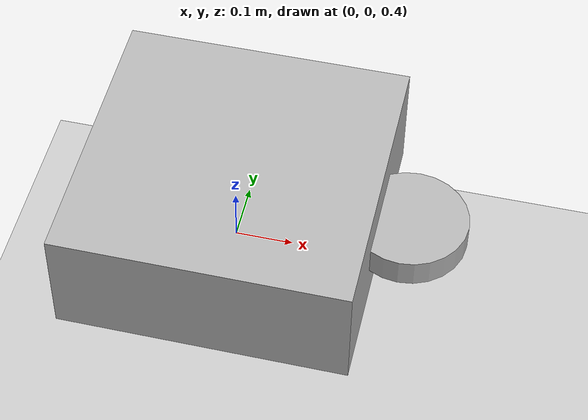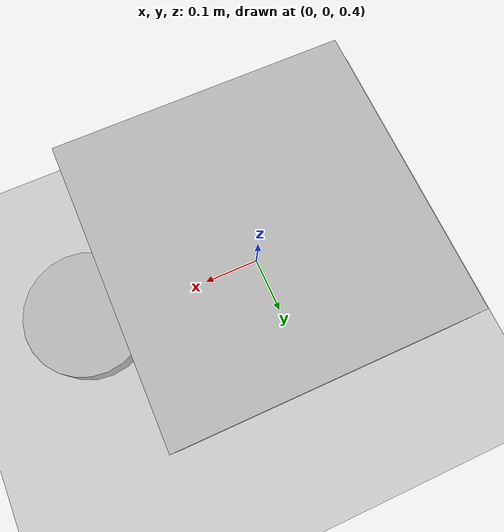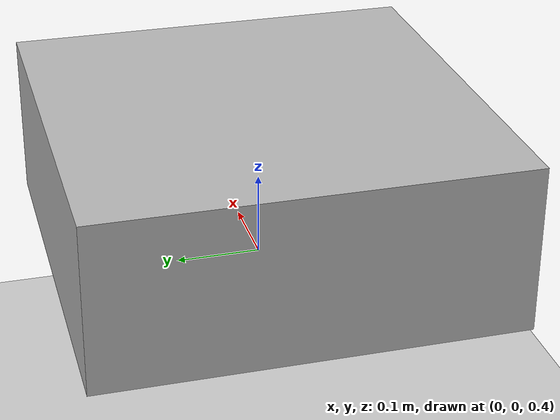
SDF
<?xml version="1.0" ?>
<sdf version="1.6">
  <world name="default">

    <!-- Ground Plane -->
    <model name="ground_plane">
      <static>true</static>
      <link name="link">
        <collision name="collision">
          <geometry>
            <plane>
              <normal>0 0 1</normal>
              <size>100 100</size>
            </plane>
          </geometry>
        </collision>
        <visual name="visual">
          <geometry>
            <plane>
              <normal>0 0 1</normal>
              <size>100 100</size>
            </plane>
          </geometry>
          <material>
            <ambient>0.8 0.8 0.8 1</ambient>
            <diffuse>0.8 0.8 0.8 1</diffuse>
            <specular>0.8 0.8 0.8 1</specular>
          </material>
        </visual>
      </link>
    </model>

    <!-- Directional Light -->
    <light type="directional" name="sun">
      <cast_shadows>true</cast_shadows>
      <pose>0 0 10 0 0 0</pose>
      <diffuse>0.8 0.8 0.8 1</diffuse>
      <specular>0.2 0.2 0.2 1</specular>
      <attenuation>
        <range>1000</range>
        <constant>0.9</constant>
        <linear>0.01</linear>
        <quadratic>0.001</quadratic>
      </attenuation>
      <direction>-0.5 0.1 -0.9</direction>
    </light>

    <!-- Robot Model with Joint -->
    <model name="box_bot">
      <pose>0 0 0.5 0 0 0</pose>
      <link name="base_link">
        <pose>0 0 0 0 0 0</pose>
        <inertial>
          <mass>1.0</mass>
          <inertia>
            <ixx>0.01</ixx> <iyy>0.01</iyy> <izz>0.01</izz>
            <ixy>0.0</ixy> <ixz>0.0</ixz> <iyz>0.0</iyz>
          </inertia>
        </inertial>
        <collision name="collision">
          <geometry>
            <box>
              <size>0.5 0.5 0.2</size>
            </box>
          </geometry>
        </collision>
        <visual name="visual">
          <geometry>
            <box>
              <size>0.5 0.5 0.2</size>
            </box>
          </geometry>
        </visual>
      </link>

      <link name="wheel_link">
        <pose>0.3 0 0 0 0 0</pose>
        <inertial>
          <mass>0.5</mass>
          <inertia>
            <ixx>0.005</ixx> <iyy>0.005</iyy> <izz>0.005</izz>
            <ixy>0.0</ixy> <ixz>0.0</ixz> <iyz>0.0</iyz>
          </inertia>
        </inertial>
        <collision name="collision">
          <geometry>
            <cylinder>
              <radius>0.1</radius>
              <length>0.05</length>
            </cylinder>
          </geometry>
        </collision>
        <visual name="visual">
          <geometry>
            <cylinder>
              <radius>0.1</radius>
              <length>0.05</length>
            </cylinder>
          </geometry>
        </visual>
      </link>

      <!-- Revolute Joint -->
      <joint name="wheel_joint" type="revolute">
        <parent>base_link</parent>
        <child>wheel_link</child>
        <pose>0.25 0 0 0 0 0</pose>
        <axis>
          <xyz>0 1 0</xyz>
          <limit>
            <lower>-3.14</lower>
            <upper>3.14</upper>
          </limit>
          <dynamics>
            <damping>0.1</damping>
          </dynamics>
        </axis>
      </joint>
    </model>

    <!-- Physics -->
    <physics name="default_physics" type="ode">
      <max_step_size>0.001</max_step_size>
      <real_time_factor>1.0</real_time_factor>
    </physics>

    <!-- Plugins -->
    <plugin filename="gz-sim-physics-system"
            name="gz::sim::systems::Physics" />

    <plugin filename="gz-sim-user-commands-system"
            name="gz::sim::systems::UserCommands" />

    <plugin filename="gz-sim-scene-broadcaster-system"
            name="gz::sim::systems::SceneBroadcaster" />

    <plugin filename="gz-sim-sensors-system"
            name="gz::sim::systems::Sensors">
      <render_engine>ogre2</render_engine>
    </plugin>

    <plugin filename="gz-sim-joint-state-publisher-system"
            name="gz::sim::systems::JointStatePublisher">
      <topic>joint_states</topic>
      <joint_name>wheel_joint</joint_name>
    </plugin>

  </world>
</sdf>
